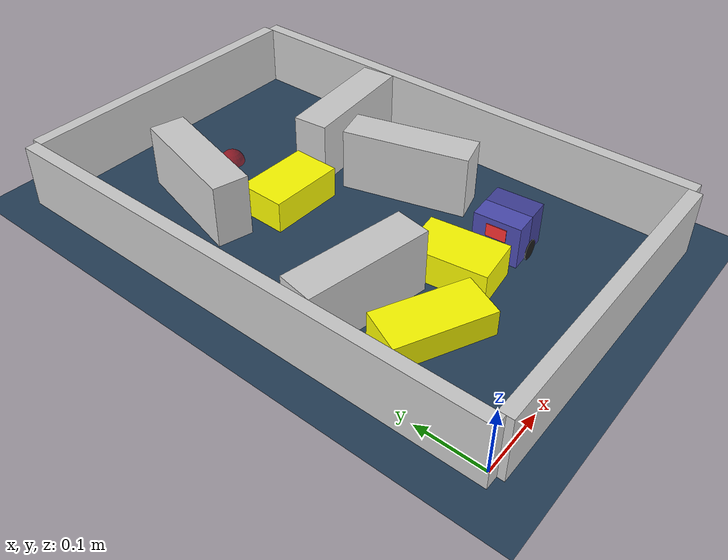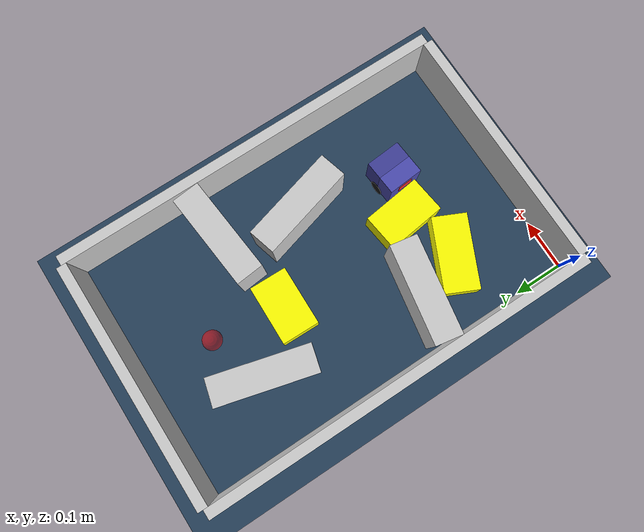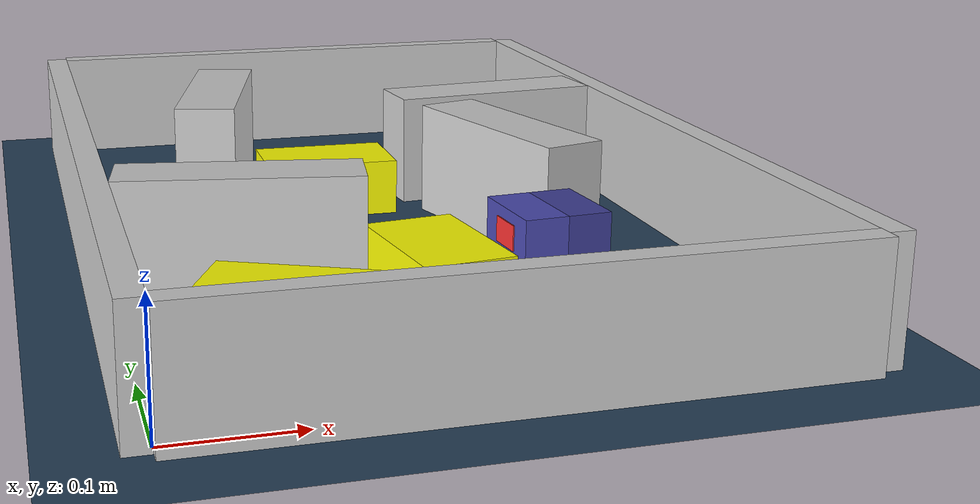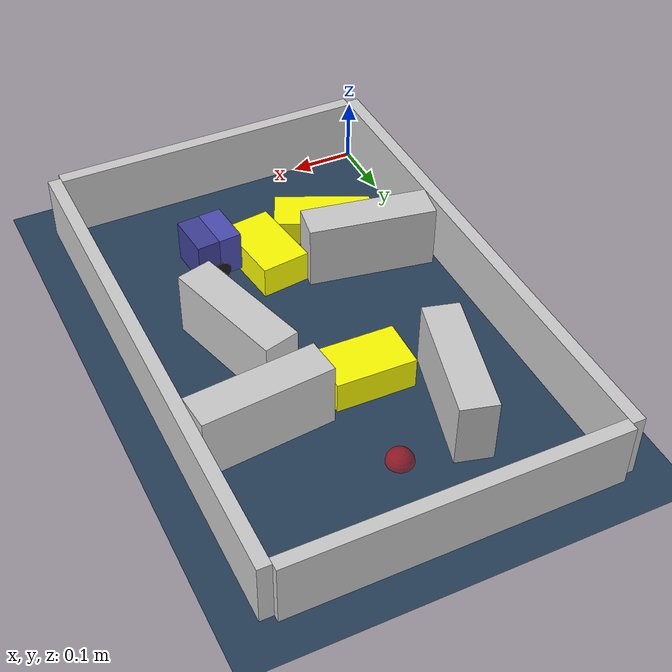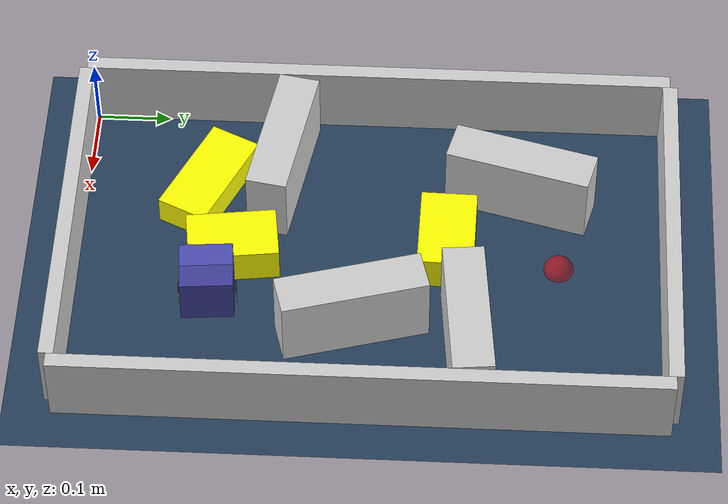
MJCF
<?xml version='1.0' encoding='utf-8'?>
<mujoco model="real_buildable">
  <compiler angle="degree" />
  <option timestep="0.002" integrator="implicitfast" iterations="100" cone="elliptic" />
  <default>
    <geom density="1" />
  </default>
  <asset>
    <texture builtin="gradient" height="3072" rgb1="0.3 0.5 0.7" rgb2="0 0 0" type="skybox" width="512" />
    <texture builtin="checker" height="300" mark="edge" markrgb="0.8 0.8 0.8" name="groundplane" rgb1="0.2 0.3 0.4" rgb2="0.1 0.2 0.3" type="2d" width="300" />
    <material name="groundplane" reflectance="0.2" texrepeat="5 5" texture="groundplane" texuniform="true" />
  </asset>
  <worldbody>
    <light dir="0 0 -1" directional="true" pos="0 0 1.5" />
    <geom name="floor" type="plane" condim="4" friction="0.5 0.005 0.001" material="groundplane" size="0 0 0.05" />
    <body name="walls">
      <geom name="wall_boundary_left" type="box" condim="4" friction="1.0 0.005 0.0001" rgba="0.8 0.8 0.8 1" pos="-0.010000 0.387500 0.050000" euler="0 0 0.000000" size="0.010000 0.397500 0.050000" />
      <geom name="wall_boundary_right" type="box" condim="4" friction="1.0 0.005 0.0001" rgba="0.8 0.8 0.8 1" pos="0.500000 0.387500 0.050000" euler="0 0 0.000000" size="0.010000 0.397500 0.050000" />
      <geom name="wall_boundary_bottom" type="box" condim="4" friction="1.0 0.005 0.0001" rgba="0.8 0.8 0.8 1" pos="0.245000 -0.010000 0.050000" euler="0 0 0.000000" size="0.245000 0.010000 0.050000" />
      <geom name="wall_boundary_top" type="box" condim="4" friction="1.0 0.005 0.0001" rgba="0.8 0.8 0.8 1" pos="0.245000 0.785000 0.050000" euler="0 0 0.000000" size="0.245000 0.010000 0.050000" />
      <geom name="wall_inner_1" type="box" condim="4" friction="1.0 0.005 0.0001" rgba="0.8 0.8 0.8 1" pos="0.100786 0.264573 0.050000" euler="0 0 170.045787" size="0.097500 0.027500 0.050000" />
      <geom name="wall_inner_2" type="box" condim="4" friction="1.0 0.005 0.0001" rgba="0.8 0.8 0.8 1" pos="0.357958 0.369672 0.050000" euler="0 0 105.422125" size="0.097500 0.027500 0.050000" />
      <geom name="wall_inner_3" type="box" condim="4" friction="1.0 0.005 0.0001" rgba="0.8 0.8 0.8 1" pos="0.390000 0.521000 0.050000" euler="0 0 5.500000" size="0.097500 0.027500 0.050000" />
      <geom name="wall_inner_4" type="box" condim="4" friction="1.0 0.005 0.0001" rgba="0.8 0.8 0.8 1" pos="0.132000 0.586000 0.050000" euler="0 0 75.200000" size="0.097500 0.027500 0.050000" />
    </body>
    <body name="car" pos="0.32254844664324339 0.17831408898138773 0.01" quat="0.039970985413431241 0 0 -0.99920084083485405">
      <freejoint name="car_freejoint" />
      <inertial pos="0 0 0.0375" mass="0.35" diaginertia="0.000266 0.000266 0.000286" />
      <geom name="front_chassis_collision" type="box" pos="0.0175 0 0.0375" size="0.0175 0.035 0.0325" rgba="0.3 0.3 0.7 1" />
      <geom name="rear_chassis_collision" type="box" pos="-0.0175 0 0.0375" size="0.0175 0.035 0.0325" rgba="0.25 0.25 0.6 1" />
      <geom name="front_marker" type="box" pos="0.034 0 0.0505" size="0.002 0.015 0.01" rgba="1 0.2 0.2 1" contype="0" conaffinity="0" />
      <body name="rear_support_body" pos="-0.03 0 0.0025">
        <joint name="rear_caster_joint" type="ball" damping="0.0001" />
        <inertial pos="0 0 0" mass="0.025" diaginertia="0.000001 0.000001 0.000001" />
        <geom name="rear_support" type="sphere" pos="0 0 0" size="0.0025" friction="0 0 0" rgba="0.7 0.1 0.1 1" />
      </body>
      <body name="front_support_body" pos="0.03 0 0.0025">
        <joint name="front_caster_joint" type="ball" damping="0.0001" />
        <inertial pos="0 0 0" mass="0.025" diaginertia="0.000001 0.000001 0.000001" />
        <geom name="front_support" type="sphere" pos="0 0 0" size="0.0025" friction="0 0 0" rgba="0.1 0.7 0.1 1" />
      </body>
      <body name="left_wheel" pos="0 0.0375 0.015">
        <inertial pos="0 0 0" mass="0.05" diaginertia="0.000003 0.000006 0.000003" />
        <joint name="left_wheel_joint" type="hinge" axis="0 1 0" damping="0.01" armature="0.0001" />
        <geom name="left_wheel_collision" type="cylinder" size="0.015 0.0005" euler="90 0 0" rgba="0.1 0.1 0.1 1" />
      </body>
      <body name="right_wheel" pos="0 -0.0375 0.015">
        <inertial pos="0 0 0" mass="0.05" diaginertia="0.000003 0.000006 0.000003" />
        <joint name="right_wheel_joint" type="hinge" axis="0 1 0" damping="0.01" armature="0.0001" />
        <geom name="right_wheel_collision" type="cylinder" size="0.015 0.0005" euler="90 0 0" rgba="0.1 0.1 0.1 1" />
      </body>
    </body>
    <body name="obstacle_0_movable">
      <geom name="obstacle_0_movable" condim="4" pos="0.24379557046349248 0.20558158164786872 0.025000000000000001" friction="1 0.005 0.0001" rgba="1 1 0 1" size="0.037500 0.060000 0.025000" type="box" mass="0.1" quat="0.99798985008554253 0 0 0.063373962525916441" />
      <joint type="free" />
    </body>
    <body name="obstacle_1_movable">
      <geom name="obstacle_1_movable" condim="4" pos="0.21999999999999989 0.48999999999999849 0.025000000000000001" friction="1 0.005 0.0001" rgba="1 1 0 1" size="0.037500 0.060000 0.025000" type="box" mass="0.1" quat="0.71447267963280336 0 0 0.69966334051336543" />
      <joint type="free" />
    </body>
    <body name="obstacle_2_movable">
      <geom name="obstacle_2_movable" condim="4" pos="0.12849771174519145 0.16471221708207051 0.02" friction="1 0.005 0.0001" rgba="1 1 0 1" size="0.035000 0.075000 0.020000" type="box" mass="0.1" quat="0.84431390460081068 0 0 0.53584888774516748" />
      <joint type="free" />
    </body>
    <site name="goal" type="sphere" pos="0.245000 0.640000 0.0" size="0.02" rgba="1 0 0 0.5" />
  </worldbody>
  <actuator>
    <velocity name="left_wheel_drive" joint="left_wheel_joint" ctrlrange="-25 25" kv="0.75" forcerange="-0.5 0.5" />
    <velocity name="right_wheel_drive" joint="right_wheel_joint" ctrlrange="-25 25" kv="0.75" forcerange="-0.5 0.5" />
  </actuator>
</mujoco>
